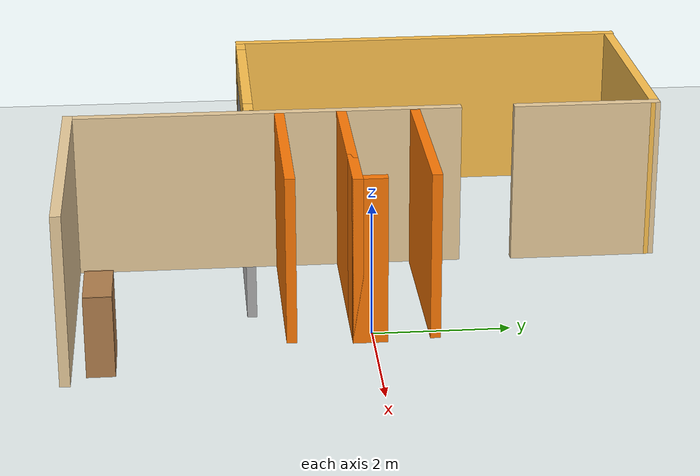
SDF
<sdf version="1.6">
 <world name="default">
  <model name="ground_plane">
   <static>1</static>
   <link name="link">
    <collision name="collision">
     <geometry><plane><normal>0 0 1</normal><size>100 100</size></plane></geometry>
     <surface><friction><ode><mu>100</mu><mu2>50</mu2></ode></friction></surface>
    </collision>
    <visual name="visual">
     <cast_shadows>0</cast_shadows>
     <geometry><plane><normal>0 0 1</normal><size>100 100</size></plane></geometry>
     <material>
      <script><uri>file://media/materials/scripts/gazebo.material</uri><name>Gazebo/Grey</name></script>
     </material>
    </visual>
   </link>
  </model>
  <model name="my_world">
   <link name="Wall_3">
    <pose>-1.47498 -4.475 0 0 -0 3.14159</pose>
    <visual name="Wall_3_Visual">
     <pose>0 0 1.25 0 -0 0</pose>
     <geometry><box><size>4 0.15 2.5</size></box></geometry>
     <material>
      <script><uri>file://media/materials/scripts/gazebo.material</uri><name>Gazebo/Grey</name></script>
      <ambient>0.921569 0.807843 0.615686 1</ambient>
      <diffuse>0.7 0.7 0.7 1</diffuse>
      <specular>0.01 0.01 0.01 1</specular>
      <emissive>0 0 0 1</emissive>
      <shader type="pixel"/>
     </material>
     <meta><layer>0</layer></meta>
    </visual>
    <collision name="Wall_3_Collision">
     <pose>0 0 1.25 0 -0 0</pose>
     <geometry><box><size>4 0.15 2.5</size></box></geometry>
     <surface>
      <friction>
       <ode><mu>1</mu><mu2>1</mu2><fdir1>0 0 0</fdir1><slip1>0</slip1><slip2>0</slip2></ode>
       <torsional>
        <coefficient>1</coefficient>
        <patch_radius>0</patch_radius>
        <surface_radius>0</surface_radius>
        <use_patch_radius>1</use_patch_radius>
        <ode><slip>0</slip></ode>
       </torsional>
      </friction>
      <bounce><restitution_coefficient>0</restitution_coefficient><threshold>1e+06</threshold></bounce>
      <contact>
       <collide_without_contact>0</collide_without_contact>
       <collide_without_contact_bitmask>1</collide_without_contact_bitmask>
       <collide_bitmask>1</collide_bitmask>
       <ode>
        <soft_cfm>0</soft_cfm>
        <soft_erp>0.2</soft_erp>
        <kp>1e+13</kp>
        <kd>1</kd>
        <max_vel>0.01</max_vel>
        <min_depth>0</min_depth>
       </ode>
       <bullet>
        <split_impulse>1</split_impulse>
        <split_impulse_penetration_threshold>-0.01</split_impulse_penetration_threshold>
        <soft_cfm>0</soft_cfm>
        <soft_erp>0.2</soft_erp>
        <kp>1e+13</kp>
        <kd>1</kd>
       </bullet>
      </contact>
     </surface>
    </collision>
   </link>
   <link name="Wall_40">
    <pose>-1.94141 -1.31804 0 0 -0 3.14159</pose>
    <visual name="Wall_40_Visual">
     <pose>0 0 1.25 0 -0 0</pose>
     <geometry><box><size>2.75 0.15 2.5</size></box></geometry>
     <material>
      <script><uri>file://media/materials/scripts/gazebo.material</uri><name>Gazebo/Grey</name></script>
      <ambient>0.996078 0.47451 0.0196078 1</ambient>
      <diffuse>0.7 0.7 0.7 1</diffuse>
      <specular>0.01 0.01 0.01 1</specular>
      <emissive>0 0 0 1</emissive>
      <shader type="pixel"/>
     </material>
     <meta><layer>0</layer></meta>
    </visual>
    <collision name="Wall_40_Collision">
     <pose>0 0 1.25 0 -0 0</pose>
     <geometry><box><size>2.75 0.15 2.5</size></box></geometry>
     <surface>
      <friction>
       <ode><mu>1</mu><mu2>1</mu2><fdir1>0 0 0</fdir1><slip1>0</slip1><slip2>0</slip2></ode>
       <torsional>
        <coefficient>1</coefficient>
        <patch_radius>0</patch_radius>
        <surface_radius>0</surface_radius>
        <use_patch_radius>1</use_patch_radius>
        <ode><slip>0</slip></ode>
       </torsional>
      </friction>
      <bounce><restitution_coefficient>0</restitution_coefficient><threshold>1e+06</threshold></bounce>
      <contact>
       <collide_without_contact>0</collide_without_contact>
       <collide_without_contact_bitmask>1</collide_without_contact_bitmask>
       <collide_bitmask>1</collide_bitmask>
       <ode>
        <soft_cfm>0</soft_cfm>
        <soft_erp>0.2</soft_erp>
        <kp>1e+13</kp>
        <kd>1</kd>
        <max_vel>0.01</max_vel>
        <min_depth>0</min_depth>
       </ode>
       <bullet>
        <split_impulse>1</split_impulse>
        <split_impulse_penetration_threshold>-0.01</split_impulse_penetration_threshold>
        <soft_cfm>0</soft_cfm>
        <soft_erp>0.2</soft_erp>
        <kp>1e+13</kp>
        <kd>1</kd>
       </bullet>
      </contact>
     </surface>
    </collision>
   </link>
   <link name="Wall_42">
    <pose>-1.9262 0.735138 0 0 -0 3.14159</pose>
    <visual name="Wall_42_Visual">
     <pose>0 0 1.25 0 -0 0</pose>
     <geometry><box><size>2.75 0.15 2.5</size></box></geometry>
     <material>
      <script><uri>file://media/materials/scripts/gazebo.material</uri><name>Gazebo/Grey</name></script>
      <ambient>0.996078 0.47451 0.0196078 1</ambient>
      <diffuse>0.7 0.7 0.7 1</diffuse>
      <specular>0.01 0.01 0.01 1</specular>
      <emissive>0 0 0 1</emissive>
      <shader type="pixel"/>
     </material>
     <meta><layer>0</layer></meta>
    </visual>
    <collision name="Wall_42_Collision">
     <pose>0 0 1.25 0 -0 0</pose>
     <geometry><box><size>2.75 0.15 2.5</size></box></geometry>
     <surface>
      <friction>
       <ode><mu>1</mu><mu2>1</mu2><fdir1>0 0 0</fdir1><slip1>0</slip1><slip2>0</slip2></ode>
       <torsional>
        <coefficient>1</coefficient>
        <patch_radius>0</patch_radius>
        <surface_radius>0</surface_radius>
        <use_patch_radius>1</use_patch_radius>
        <ode><slip>0</slip></ode>
       </torsional>
      </friction>
      <bounce><restitution_coefficient>0</restitution_coefficient><threshold>1e+06</threshold></bounce>
      <contact>
       <collide_without_contact>0</collide_without_contact>
       <collide_without_contact_bitmask>1</collide_without_contact_bitmask>
       <collide_bitmask>1</collide_bitmask>
       <ode>
        <soft_cfm>0</soft_cfm>
        <soft_erp>0.2</soft_erp>
        <kp>1e+13</kp>
        <kd>1</kd>
        <max_vel>0.01</max_vel>
        <min_depth>0</min_depth>
       </ode>
       <bullet>
        <split_impulse>1</split_impulse>
        <split_impulse_penetration_threshold>-0.01</split_impulse_penetration_threshold>
        <soft_cfm>0</soft_cfm>
        <soft_erp>0.2</soft_erp>
        <kp>1e+13</kp>
        <kd>1</kd>
       </bullet>
      </contact>
     </surface>
    </collision>
   </link>
   <link name="Wall_45">
    <pose>-0.976844 -0.380071 0 0 -0 0</pose>
    <visual name="Wall_45_Visual">
     <pose>0 0 1.25 0 -0 0</pose>
     <geometry><box><size>1 0.15 2.5</size></box></geometry>
     <material>
      <script><uri>file://media/materials/scripts/gazebo.material</uri><name>Gazebo/Grey</name></script>
      <ambient>0.996078 0.47451 0.0196078 1</ambient>
      <diffuse>0.7 0.7 0.7 1</diffuse>
      <specular>0.01 0.01 0.01 1</specular>
      <emissive>0 0 0 1</emissive>
      <shader type="pixel"/>
     </material>
     <meta><layer>0</layer></meta>
    </visual>
    <collision name="Wall_45_Collision">
     <pose>0 0 1.25 0 -0 0</pose>
     <geometry><box><size>1 0.15 2.5</size></box></geometry>
     <surface>
      <friction>
       <ode><mu>1</mu><mu2>1</mu2><fdir1>0 0 0</fdir1><slip1>0</slip1><slip2>0</slip2></ode>
       <torsional>
        <coefficient>1</coefficient>
        <patch_radius>0</patch_radius>
        <surface_radius>0</surface_radius>
        <use_patch_radius>1</use_patch_radius>
        <ode><slip>0</slip></ode>
       </torsional>
      </friction>
      <bounce><restitution_coefficient>0</restitution_coefficient><threshold>1e+06</threshold></bounce>
      <contact>
       <collide_without_contact>0</collide_without_contact>
       <collide_without_contact_bitmask>1</collide_without_contact_bitmask>
       <collide_bitmask>1</collide_bitmask>
       <ode>
        <soft_cfm>0</soft_cfm>
        <soft_erp>0.2</soft_erp>
        <kp>1e+13</kp>
        <kd>1</kd>
        <max_vel>0.01</max_vel>
        <min_depth>0</min_depth>
       </ode>
       <bullet>
        <split_impulse>1</split_impulse>
        <split_impulse_penetration_threshold>-0.01</split_impulse_penetration_threshold>
        <soft_cfm>0</soft_cfm>
        <soft_erp>0.2</soft_erp>
        <kp>1e+13</kp>
        <kd>1</kd>
       </bullet>
      </contact>
     </surface>
    </collision>
   </link>
   <link name="Wall_47">
    <pose>-2.32684 -0.380071 0 0 -0 3.14159</pose>
    <visual name="Wall_47_Visual">
     <pose>0 0 1.25 0 -0 0</pose>
     <geometry><box><size>2 0.15 2.5</size></box></geometry>
     <material>
      <script><uri>file://media/materials/scripts/gazebo.material</uri><name>Gazebo/Grey</name></script>
      <ambient>0.996078 0.47451 0.0196078 1</ambient>
      <diffuse>0.7 0.7 0.7 1</diffuse>
      <specular>0.01 0.01 0.01 1</specular>
      <emissive>0 0 0 1</emissive>
      <shader type="pixel"/>
     </material>
     <meta><layer>0</layer></meta>
    </visual>
    <collision name="Wall_47_Collision">
     <pose>0 0 1.25 0 -0 0</pose>
     <geometry><box><size>2 0.15 2.5</size></box></geometry>
     <surface>
      <friction>
       <ode><mu>1</mu><mu2>1</mu2><fdir1>0 0 0</fdir1><slip1>0</slip1><slip2>0</slip2></ode>
       <torsional>
        <coefficient>1</coefficient>
        <patch_radius>0</patch_radius>
        <surface_radius>0</surface_radius>
        <use_patch_radius>1</use_patch_radius>
        <ode><slip>0</slip></ode>
       </torsional>
      </friction>
      <bounce><restitution_coefficient>0</restitution_coefficient><threshold>1e+06</threshold></bounce>
      <contact>
       <collide_without_contact>0</collide_without_contact>
       <collide_without_contact_bitmask>1</collide_without_contact_bitmask>
       <collide_bitmask>1</collide_bitmask>
       <ode>
        <soft_cfm>0</soft_cfm>
        <soft_erp>0.2</soft_erp>
        <kp>1e+13</kp>
        <kd>1</kd>
        <max_vel>0.01</max_vel>
        <min_depth>0</min_depth>
       </ode>
       <bullet>
        <split_impulse>1</split_impulse>
        <split_impulse_penetration_threshold>-0.01</split_impulse_penetration_threshold>
        <soft_cfm>0</soft_cfm>
        <soft_erp>0.2</soft_erp>
        <kp>1e+13</kp>
        <kd>1</kd>
       </bullet>
      </contact>
     </surface>
    </collision>
   </link>
   <link name="Wall_49">
    <pose>-0.551844 -0.205071 0 0 -0 1.5708</pose>
    <visual name="Wall_49_Visual">
     <pose>0 0 1.25 0 -0 0</pose>
     <geometry><box><size>0.5 0.15 2.5</size></box></geometry>
     <material>
      <script><uri>file://media/materials/scripts/gazebo.material</uri><name>Gazebo/Grey</name></script>
      <ambient>0.996078 0.47451 0.0196078 1</ambient>
      <diffuse>0.7 0.7 0.7 1</diffuse>
      <specular>0.01 0.01 0.01 1</specular>
      <emissive>0 0 0 1</emissive>
      <shader type="pixel"/>
     </material>
     <meta><layer>0</layer></meta>
    </visual>
    <collision name="Wall_49_Collision">
     <pose>0 0 1.25 0 -0 0</pose>
     <geometry><box><size>0.5 0.15 2.5</size></box></geometry>
     <surface>
      <friction>
       <ode><mu>1</mu><mu2>1</mu2><fdir1>0 0 0</fdir1><slip1>0</slip1><slip2>0</slip2></ode>
       <torsional>
        <coefficient>1</coefficient>
        <patch_radius>0</patch_radius>
        <surface_radius>0</surface_radius>
        <use_patch_radius>1</use_patch_radius>
        <ode><slip>0</slip></ode>
       </torsional>
      </friction>
      <bounce><restitution_coefficient>0</restitution_coefficient><threshold>1e+06</threshold></bounce>
      <contact>
       <collide_without_contact>0</collide_without_contact>
       <collide_without_contact_bitmask>1</collide_without_contact_bitmask>
       <collide_bitmask>1</collide_bitmask>
       <ode>
        <soft_cfm>0</soft_cfm>
        <soft_erp>0.2</soft_erp>
        <kp>1e+13</kp>
        <kd>1</kd>
        <max_vel>0.01</max_vel>
        <min_depth>0</min_depth>
       </ode>
       <bullet>
        <split_impulse>1</split_impulse>
        <split_impulse_penetration_threshold>-0.01</split_impulse_penetration_threshold>
        <soft_cfm>0</soft_cfm>
        <soft_erp>0.2</soft_erp>
        <kp>1e+13</kp>
        <kd>1</kd>
       </bullet>
      </contact>
     </surface>
    </collision>
   </link>
   <link name="Wall_5">
    <pose>-3.39998 1.375 0 0 -0 0</pose>
    <visual name="Wall_5_Visual">
     <pose>0 0 1.25 0 -0 0</pose>
     <geometry><box><size>0.15 0.15 2.5</size></box></geometry>
     <material>
      <script><uri>file://media/materials/scripts/gazebo.material</uri><name>Gazebo/Grey</name></script>
      <ambient>1 1 1 1</ambient>
      <diffuse>0.7 0.7 0.7 1</diffuse>
      <specular>0.01 0.01 0.01 1</specular>
      <emissive>0 0 0 1</emissive>
      <shader type="pixel"/>
     </material>
     <meta><layer>0</layer></meta>
    </visual>
    <collision name="Wall_5_Collision">
     <pose>0 0 1.25 0 -0 0</pose>
     <geometry><box><size>0.15 0.15 2.5</size></box></geometry>
     <surface>
      <friction>
       <ode><mu>1</mu><mu2>1</mu2><fdir1>0 0 0</fdir1><slip1>0</slip1><slip2>0</slip2></ode>
       <torsional>
        <coefficient>1</coefficient>
        <patch_radius>0</patch_radius>
        <surface_radius>0</surface_radius>
        <use_patch_radius>1</use_patch_radius>
        <ode><slip>0</slip></ode>
       </torsional>
      </friction>
      <bounce><restitution_coefficient>0</restitution_coefficient><threshold>1e+06</threshold></bounce>
      <contact>
       <collide_without_contact>0</collide_without_contact>
       <collide_without_contact_bitmask>1</collide_without_contact_bitmask>
       <collide_bitmask>1</collide_bitmask>
       <ode>
        <soft_cfm>0</soft_cfm>
        <soft_erp>0.2</soft_erp>
        <kp>1e+13</kp>
        <kd>1</kd>
        <max_vel>0.01</max_vel>
        <min_depth>0</min_depth>
       </ode>
       <bullet>
        <split_impulse>1</split_impulse>
        <split_impulse_penetration_threshold>-0.01</split_impulse_penetration_threshold>
        <soft_cfm>0</soft_cfm>
        <soft_erp>0.2</soft_erp>
        <kp>1e+13</kp>
        <kd>1</kd>
       </bullet>
      </contact>
     </surface>
    </collision>
   </link>
   <link name="Wall_51">
    <pose>-3.36377 3.3754 0 0 -0 1.5708</pose>
    <visual name="Wall_51_Visual">
     <pose>0 0 1.25 0 -0 0</pose>
     <geometry><box><size>2.25 0.15 2.5</size></box></geometry>
     <material>
      <script><uri>file://media/materials/scripts/gazebo.material</uri><name>Gazebo/Grey</name></script>
      <ambient>0.921569 0.807843 0.615686 1</ambient>
      <diffuse>0.7 0.7 0.7 1</diffuse>
      <specular>0.01 0.01 0.01 1</specular>
      <emissive>0 0 0 1</emissive>
      <shader type="pixel"/>
     </material>
     <meta><layer>0</layer></meta>
    </visual>
    <collision name="Wall_51_Collision">
     <pose>0 0 1.25 0 -0 0</pose>
     <geometry><box><size>2.25 0.15 2.5</size></box></geometry>
     <surface>
      <friction>
       <ode><mu>1</mu><mu2>1</mu2><fdir1>0 0 0</fdir1><slip1>0</slip1><slip2>0</slip2></ode>
       <torsional>
        <coefficient>1</coefficient>
        <patch_radius>0</patch_radius>
        <surface_radius>0</surface_radius>
        <use_patch_radius>1</use_patch_radius>
        <ode><slip>0</slip></ode>
       </torsional>
      </friction>
      <bounce><restitution_coefficient>0</restitution_coefficient><threshold>1e+06</threshold></bounce>
      <contact>
       <collide_without_contact>0</collide_without_contact>
       <collide_without_contact_bitmask>1</collide_without_contact_bitmask>
       <collide_bitmask>1</collide_bitmask>
       <ode>
        <soft_cfm>0</soft_cfm>
        <soft_erp>0.2</soft_erp>
        <kp>1e+13</kp>
        <kd>1</kd>
        <max_vel>0.01</max_vel>
        <min_depth>0</min_depth>
       </ode>
       <bullet>
        <split_impulse>1</split_impulse>
        <split_impulse_penetration_threshold>-0.01</split_impulse_penetration_threshold>
        <soft_cfm>0</soft_cfm>
        <soft_erp>0.2</soft_erp>
        <kp>1e+13</kp>
        <kd>1</kd>
       </bullet>
      </contact>
     </surface>
    </collision>
   </link>
   <link name="Wall_55">
    <pose>-6.92187 1.32892 0 0 -0 1.57325</pose>
    <visual name="Wall_55_Visual">
     <pose>0 0 1.25 0 -0 0</pose>
     <geometry><box><size>6.35648 0.15 2.5</size></box></geometry>
     <material>
      <script><uri>file://media/materials/scripts/gazebo.material</uri><name>Gazebo/Grey</name></script>
      <ambient>1 0.764706 0.305882 1</ambient>
      <diffuse>0.7 0.7 0.7 1</diffuse>
      <specular>0.01 0.01 0.01 1</specular>
      <emissive>0 0 0 1</emissive>
      <shader type="pixel"/>
     </material>
     <meta><layer>0</layer></meta>
    </visual>
    <collision name="Wall_55_Collision">
     <pose>0 0 1.25 0 -0 0</pose>
     <geometry><box><size>6.35648 0.15 2.5</size></box></geometry>
     <surface>
      <friction>
       <ode><mu>1</mu><mu2>1</mu2><fdir1>0 0 0</fdir1><slip1>0</slip1><slip2>0</slip2></ode>
       <torsional>
        <coefficient>1</coefficient>
        <patch_radius>0</patch_radius>
        <surface_radius>0</surface_radius>
        <use_patch_radius>1</use_patch_radius>
        <ode><slip>0</slip></ode>
       </torsional>
      </friction>
      <bounce><restitution_coefficient>0</restitution_coefficient><threshold>1e+06</threshold></bounce>
      <contact>
       <collide_without_contact>0</collide_without_contact>
       <collide_without_contact_bitmask>1</collide_without_contact_bitmask>
       <collide_bitmask>1</collide_bitmask>
       <ode>
        <soft_cfm>0</soft_cfm>
        <soft_erp>0.2</soft_erp>
        <kp>1e+13</kp>
        <kd>1</kd>
        <max_vel>0.01</max_vel>
        <min_depth>0</min_depth>
       </ode>
       <bullet>
        <split_impulse>1</split_impulse>
        <split_impulse_penetration_threshold>-0.01</split_impulse_penetration_threshold>
        <soft_cfm>0</soft_cfm>
        <soft_erp>0.2</soft_erp>
        <kp>1e+13</kp>
        <kd>1</kd>
       </bullet>
      </contact>
     </surface>
    </collision>
   </link>
   <link name="Wall_56">
    <pose>-5.14663 4.42117 0 0 -0 0.00237</pose>
    <visual name="Wall_56_Visual">
     <pose>0 0 1.25 0 -0 0</pose>
     <geometry><box><size>3.71571 0.15 2.5</size></box></geometry>
     <material>
      <script><uri>file://media/materials/scripts/gazebo.material</uri><name>Gazebo/Grey</name></script>
      <ambient>1 0.764706 0.305882 1</ambient>
      <diffuse>0.7 0.7 0.7 1</diffuse>
      <specular>0.01 0.01 0.01 1</specular>
      <emissive>0 0 0 1</emissive>
      <shader type="pixel"/>
     </material>
     <meta><layer>0</layer></meta>
    </visual>
    <collision name="Wall_56_Collision">
     <pose>0 0 1.25 0 -0 0</pose>
     <geometry><box><size>3.71571 0.15 2.5</size></box></geometry>
     <surface>
      <friction>
       <ode><mu>1</mu><mu2>1</mu2><fdir1>0 0 0</fdir1><slip1>0</slip1><slip2>0</slip2></ode>
       <torsional>
        <coefficient>1</coefficient>
        <patch_radius>0</patch_radius>
        <surface_radius>0</surface_radius>
        <use_patch_radius>1</use_patch_radius>
        <ode><slip>0</slip></ode>
       </torsional>
      </friction>
      <bounce><restitution_coefficient>0</restitution_coefficient><threshold>1e+06</threshold></bounce>
      <contact>
       <collide_without_contact>0</collide_without_contact>
       <collide_without_contact_bitmask>1</collide_without_contact_bitmask>
       <collide_bitmask>1</collide_bitmask>
       <ode>
        <soft_cfm>0</soft_cfm>
        <soft_erp>0.2</soft_erp>
        <kp>1e+13</kp>
        <kd>1</kd>
        <max_vel>0.01</max_vel>
        <min_depth>0</min_depth>
       </ode>
       <bullet>
        <split_impulse>1</split_impulse>
        <split_impulse_penetration_threshold>-0.01</split_impulse_penetration_threshold>
        <soft_cfm>0</soft_cfm>
        <soft_erp>0.2</soft_erp>
        <kp>1e+13</kp>
        <kd>1</kd>
       </bullet>
      </contact>
     </surface>
    </collision>
   </link>
   <link name="Wall_58">
    <pose>-5.23927 -1.77431 0 0 -0 0</pose>
    <visual name="Wall_58_Visual_0">
     <pose>-1.52155 0 1.25 0 -0 0</pose>
     <geometry><box><size>0.456906 0.15 2.5</size></box></geometry>
     <material>
      <script><uri>file://media/materials/scripts/gazebo.material</uri><name>Gazebo/Grey</name></script>
      <ambient>1 0.764706 0.305882 1</ambient>
      <diffuse>0.7 0.7 0.7 1</diffuse>
      <specular>0.01 0.01 0.01 1</specular>
      <emissive>0 0 0 1</emissive>
      <shader type="pixel"/>
     </material>
     <meta><layer>0</layer></meta>
    </visual>
    <visual name="Wall_58_Visual_1">
     <pose>1.59098 0 1.25 0 -0 0</pose>
     <geometry><box><size>0.318044 0.15 2.5</size></box></geometry>
     <material>
      <script><uri>file://media/materials/scripts/gazebo.material</uri><name>Gazebo/Grey</name></script>
      <ambient>1 0.764706 0.305882 1</ambient>
      <diffuse>0.7 0.7 0.7 1</diffuse>
      <specular>0.01 0.01 0.01 1</specular>
      <emissive>0 0 0 1</emissive>
      <shader type="pixel"/>
     </material>
     <meta><layer>0</layer></meta>
    </visual>
    <visual name="Wall_58_Visual_2">
     <pose>0.069431 0 2.25 0 -0 0</pose>
     <geometry><box><size>2.72505 0.15 0.5</size></box></geometry>
     <material>
      <script><uri>file://media/materials/scripts/gazebo.material</uri><name>Gazebo/Grey</name></script>
      <ambient>1 0.764706 0.305882 1</ambient>
      <diffuse>0.7 0.7 0.7 1</diffuse>
      <specular>0.01 0.01 0.01 1</specular>
      <emissive>0 0 0 1</emissive>
      <shader type="pixel"/>
     </material>
     <meta><layer>0</layer></meta>
    </visual>
    <collision name="Wall_58_Collision_0">
     <pose>-1.52155 0 1.25 0 -0 0</pose>
     <geometry><box><size>0.456906 0.15 2.5</size></box></geometry>
     <surface>
      <friction>
       <ode><mu>1</mu><mu2>1</mu2><fdir1>0 0 0</fdir1><slip1>0</slip1><slip2>0</slip2></ode>
       <torsional>
        <coefficient>1</coefficient>
        <patch_radius>0</patch_radius>
        <surface_radius>0</surface_radius>
        <use_patch_radius>1</use_patch_radius>
        <ode><slip>0</slip></ode>
       </torsional>
      </friction>
      <bounce><restitution_coefficient>0</restitution_coefficient><threshold>1e+06</threshold></bounce>
      <contact>
       <collide_without_contact>0</collide_without_contact>
       <collide_without_contact_bitmask>1</collide_without_contact_bitmask>
       <collide_bitmask>1</collide_bitmask>
       <ode>
        <soft_cfm>0</soft_cfm>
        <soft_erp>0.2</soft_erp>
        <kp>1e+13</kp>
        <kd>1</kd>
        <max_vel>0.01</max_vel>
        <min_depth>0</min_depth>
       </ode>
       <bullet>
        <split_impulse>1</split_impulse>
        <split_impulse_penetration_threshold>-0.01</split_impulse_penetration_threshold>
        <soft_cfm>0</soft_cfm>
        <soft_erp>0.2</soft_erp>
        <kp>1e+13</kp>
        <kd>1</kd>
       </bullet>
      </contact>
     </surface>
    </collision>
    <collision name="Wall_58_Collision_1">
     <pose>1.59098 0 1.25 0 -0 0</pose>
     <geometry><box><size>0.318044 0.15 2.5</size></box></geometry>
     <surface>
      <friction>
       <ode><mu>1</mu><mu2>1</mu2><fdir1>0 0 0</fdir1><slip1>0</slip1><slip2>0</slip2></ode>
       <torsional>
        <coefficient>1</coefficient>
        <patch_radius>0</patch_radius>
        <surface_radius>0</surface_radius>
        <use_patch_radius>1</use_patch_radius>
        <ode><slip>0</slip></ode>
       </torsional>
      </friction>
      <bounce><restitution_coefficient>0</restitution_coefficient><threshold>1e+06</threshold></bounce>
      <contact>
       <collide_without_contact>0</collide_without_contact>
       <collide_without_contact_bitmask>1</collide_without_contact_bitmask>
       <collide_bitmask>1</collide_bitmask>
       <ode>
        <soft_cfm>0</soft_cfm>
        <soft_erp>0.2</soft_erp>
        <kp>1e+13</kp>
        <kd>1</kd>
        <max_vel>0.01</max_vel>
        <min_depth>0</min_depth>
       </ode>
       <bullet>
        <split_impulse>1</split_impulse>
        <split_impulse_penetration_threshold>-0.01</split_impulse_penetration_threshold>
        <soft_cfm>0</soft_cfm>
        <soft_erp>0.2</soft_erp>
        <kp>1e+13</kp>
        <kd>1</kd>
       </bullet>
      </contact>
     </surface>
    </collision>
    <collision name="Wall_58_Collision_2">
     <pose>0.069431 0 2.25 0 -0 0</pose>
     <geometry><box><size>2.72505 0.15 0.5</size></box></geometry>
     <surface>
      <friction>
       <ode><mu>1</mu><mu2>1</mu2><fdir1>0 0 0</fdir1><slip1>0</slip1><slip2>0</slip2></ode>
       <torsional>
        <coefficient>1</coefficient>
        <patch_radius>0</patch_radius>
        <surface_radius>0</surface_radius>
        <use_patch_radius>1</use_patch_radius>
        <ode><slip>0</slip></ode>
       </torsional>
      </friction>
      <bounce><restitution_coefficient>0</restitution_coefficient><threshold>1e+06</threshold></bounce>
      <contact>
       <collide_without_contact>0</collide_without_contact>
       <collide_without_contact_bitmask>1</collide_without_contact_bitmask>
       <collide_bitmask>1</collide_bitmask>
       <ode>
        <soft_cfm>0</soft_cfm>
        <soft_erp>0.2</soft_erp>
        <kp>1e+13</kp>
        <kd>1</kd>
        <max_vel>0.01</max_vel>
        <min_depth>0</min_depth>
       </ode>
       <bullet>
        <split_impulse>1</split_impulse>
        <split_impulse_penetration_threshold>-0.01</split_impulse_penetration_threshold>
        <soft_cfm>0</soft_cfm>
        <soft_erp>0.2</soft_erp>
        <kp>1e+13</kp>
        <kd>1</kd>
       </bullet>
      </contact>
     </surface>
    </collision>
   </link>
   <link name="Wall_6">
    <pose>-3.39998 1.375 0 0 -0 0</pose>
    <visual name="Wall_6_Visual">
     <pose>0 0 1.25 0 -0 0</pose>
     <geometry><box><size>0.15 0.15 2.5</size></box></geometry>
     <material>
      <script><uri>file://media/materials/scripts/gazebo.material</uri><name>Gazebo/Grey</name></script>
      <ambient>0.921569 0.807843 0.615686 1</ambient>
      <diffuse>0.7 0.7 0.7 1</diffuse>
      <specular>0.01 0.01 0.01 1</specular>
      <emissive>0 0 0 1</emissive>
      <shader type="pixel"/>
     </material>
     <meta><layer>0</layer></meta>
    </visual>
    <collision name="Wall_6_Collision">
     <pose>0 0 1.25 0 -0 0</pose>
     <geometry><box><size>0.15 0.15 2.5</size></box></geometry>
     <surface>
      <friction>
       <ode><mu>1</mu><mu2>1</mu2><fdir1>0 0 0</fdir1><slip1>0</slip1><slip2>0</slip2></ode>
       <torsional>
        <coefficient>1</coefficient>
        <patch_radius>0</patch_radius>
        <surface_radius>0</surface_radius>
        <use_patch_radius>1</use_patch_radius>
        <ode><slip>0</slip></ode>
       </torsional>
      </friction>
      <bounce><restitution_coefficient>0</restitution_coefficient><threshold>1e+06</threshold></bounce>
      <contact>
       <collide_without_contact>0</collide_without_contact>
       <collide_without_contact_bitmask>1</collide_without_contact_bitmask>
       <collide_bitmask>1</collide_bitmask>
       <ode>
        <soft_cfm>0</soft_cfm>
        <soft_erp>0.2</soft_erp>
        <kp>1e+13</kp>
        <kd>1</kd>
        <max_vel>0.01</max_vel>
        <min_depth>0</min_depth>
       </ode>
       <bullet>
        <split_impulse>1</split_impulse>
        <split_impulse_penetration_threshold>-0.01</split_impulse_penetration_threshold>
        <soft_cfm>0</soft_cfm>
        <soft_erp>0.2</soft_erp>
        <kp>1e+13</kp>
        <kd>1</kd>
       </bullet>
      </contact>
     </surface>
    </collision>
   </link>
   <link name="Wall_8">
    <pose>-3.39998 -1.55 0 0 0 -1.5708</pose>
    <visual name="Wall_8_Visual">
     <pose>0 0 1.25 0 -0 0</pose>
     <geometry><box><size>6 0.15 2.5</size></box></geometry>
     <material>
      <script><uri>file://media/materials/scripts/gazebo.material</uri><name>Gazebo/Grey</name></script>
      <ambient>0.921569 0.807843 0.615686 1</ambient>
      <diffuse>0.7 0.7 0.7 1</diffuse>
      <specular>0.01 0.01 0.01 1</specular>
      <emissive>0 0 0 1</emissive>
      <shader type="pixel"/>
     </material>
     <meta><layer>0</layer></meta>
    </visual>
    <collision name="Wall_8_Collision">
     <pose>0 0 1.25 0 -0 0</pose>
     <geometry><box><size>6 0.15 2.5</size></box></geometry>
     <surface>
      <friction>
       <ode><mu>1</mu><mu2>1</mu2><fdir1>0 0 0</fdir1><slip1>0</slip1><slip2>0</slip2></ode>
       <torsional>
        <coefficient>1</coefficient>
        <patch_radius>0</patch_radius>
        <surface_radius>0</surface_radius>
        <use_patch_radius>1</use_patch_radius>
        <ode><slip>0</slip></ode>
       </torsional>
      </friction>
      <bounce><restitution_coefficient>0</restitution_coefficient><threshold>1e+06</threshold></bounce>
      <contact>
       <collide_without_contact>0</collide_without_contact>
       <collide_without_contact_bitmask>1</collide_without_contact_bitmask>
       <collide_bitmask>1</collide_bitmask>
       <ode>
        <soft_cfm>0</soft_cfm>
        <soft_erp>0.2</soft_erp>
        <kp>1e+13</kp>
        <kd>1</kd>
        <max_vel>0.01</max_vel>
        <min_depth>0</min_depth>
       </ode>
       <bullet>
        <split_impulse>1</split_impulse>
        <split_impulse_penetration_threshold>-0.01</split_impulse_penetration_threshold>
        <soft_cfm>0</soft_cfm>
        <soft_erp>0.2</soft_erp>
        <kp>1e+13</kp>
        <kd>1</kd>
       </bullet>
      </contact>
     </surface>
    </collision>
   </link>
   <link name="link_2_clone_0">
    <pose>-5.15709 -1.77234 0.5 0 -0 0</pose>
    <inertial>
     <mass>1.32622</mass>
     <inertia><ixx>1.07273</ixx><ixy>0</ixy><ixz>0</ixz><iyy>1.93534</iyy><iyz>0</iyz><izz>0.867746</izz></inertia>
    </inertial>
    <visual name="visual">
     <geometry><box><size>2.79793 0.152332 3.11177</size></box></geometry>
     <material>
      <lighting>1</lighting>
      <script><uri>file://media/materials/scripts/gazebo.material</uri><name>Gazebo/Grey</name></script>
      <shader type="pixel"/>
      <ambient>0.3 0.3 0.3 1</ambient>
      <diffuse>0.7 0.7 0.7 1</diffuse>
      <specular>0.01 0.01 0.01 1</specular>
      <emissive>0 0 0 1</emissive>
     </material>
    </visual>
    <collision name="collision">
     <geometry><box><size>2.79793 0.152332 3.11177</size></box></geometry>
     <surface>
      <friction>
       <ode><mu>1</mu><mu2>1</mu2><fdir1>0 0 0</fdir1><slip1>0</slip1><slip2>0</slip2></ode>
       <torsional>
        <coefficient>1</coefficient>
        <patch_radius>0</patch_radius>
        <surface_radius>0</surface_radius>
        <use_patch_radius>1</use_patch_radius>
        <ode><slip>0</slip></ode>
       </torsional>
      </friction>
      <bounce><restitution_coefficient>0</restitution_coefficient><threshold>1e+06</threshold></bounce>
      <contact>
       <collide_without_contact>0</collide_without_contact>
       <collide_without_contact_bitmask>1</collide_without_contact_bitmask>
       <collide_bitmask>1</collide_bitmask>
       <ode>
        <soft_cfm>0</soft_cfm>
        <soft_erp>0.2</soft_erp>
        <kp>1e+13</kp>
        <kd>1</kd>
        <max_vel>0.01</max_vel>
        <min_depth>0</min_depth>
       </ode>
       <bullet>
        <split_impulse>1</split_impulse>
        <split_impulse_penetration_threshold>-0.01</split_impulse_penetration_threshold>
        <soft_cfm>0</soft_cfm>
        <soft_erp>0.2</soft_erp>
        <kp>1e+13</kp>
        <kd>1</kd>
       </bullet>
      </contact>
     </surface>
    </collision>
   </link>
   <static>1</static>
   <pose>0.782828 0.15688 0 0 -0 0</pose>
  </model>
  <model name="bookshelf">
   <static>1</static>
   <link name="link">
    <inertial><mass>1</mass></inertial>
    <collision name="back">
     <pose>0 0.005 0.6 0 -0 0</pose>
     <geometry><box><size>0.9 0.01 1.2</size></box></geometry>
    </collision>
    <visual name="visual1">
     <pose>0 0.005 0.6 0 -0 0</pose>
     <geometry><box><size>0.9 0.01 1.2</size></box></geometry>
     <material>
      <script><uri>file://media/materials/scripts/gazebo.material</uri><name>Gazebo/Wood</name></script>
     </material>
    </visual>
    <collision name="left_side">
     <pose>0.45 -0.195 0.6 0 -0 0</pose>
     <geometry><box><size>0.02 0.4 1.2</size></box></geometry>
    </collision>
    <visual name="visual2">
     <pose>0.45 -0.195 0.6 0 -0 0</pose>
     <geometry><box><size>0.02 0.4 1.2</size></box></geometry>
     <material>
      <script><uri>file://media/materials/scripts/gazebo.material</uri><name>Gazebo/Wood</name></script>
     </material>
    </visual>
    <collision name="right_side">
     <pose>-0.45 -0.195 0.6 0 -0 0</pose>
     <geometry><box><size>0.02 0.4 1.2</size></box></geometry>
    </collision>
    <visual name="visual3">
     <pose>-0.45 -0.195 0.6 0 -0 0</pose>
     <geometry><box><size>0.02 0.4 1.2</size></box></geometry>
     <material>
      <script><uri>file://media/materials/scripts/gazebo.material</uri><name>Gazebo/Wood</name></script>
     </material>
    </visual>
    <collision name="bottom">
     <pose>0 -0.195 0.03 0 -0 0</pose>
     <geometry><box><size>0.88 0.4 0.06</size></box></geometry>
    </collision>
    <visual name="visual4">
     <pose>0 -0.195 0.03 0 -0 0</pose>
     <geometry><box><size>0.88 0.4 0.06</size></box></geometry>
     <material>
      <script><uri>file://media/materials/scripts/gazebo.material</uri><name>Gazebo/Wood</name></script>
     </material>
    </visual>
    <collision name="top">
     <pose>0 -0.195 1.19 0 -0 0</pose>
     <geometry><box><size>0.88 0.4 0.02</size></box></geometry>
    </collision>
    <visual name="visual5">
     <pose>0 -0.195 1.19 0 -0 0</pose>
     <geometry><box><size>0.88 0.4 0.02</size></box></geometry>
     <material>
      <script><uri>file://media/materials/scripts/gazebo.material</uri><name>Gazebo/Wood</name></script>
     </material>
    </visual>
    <collision name="low_shelf">
     <pose>0 -0.195 0.43 0 -0 0</pose>
     <geometry><box><size>0.88 0.4 0.02</size></box></geometry>
    </collision>
    <visual name="visual6">
     <pose>0 -0.195 0.43 0 -0 0</pose>
     <geometry><box><size>0.88 0.4 0.02</size></box></geometry>
     <material>
      <script><uri>file://media/materials/scripts/gazebo.material</uri><name>Gazebo/Wood</name></script>
     </material>
    </visual>
    <collision name="high_shelf">
     <pose>0 -0.195 0.8 0 -0 0</pose>
     <geometry><box><size>0.88 0.4 0.02</size></box></geometry>
    </collision>
    <visual name="visual7">
     <pose>0 -0.195 0.8 0 -0 0</pose>
     <geometry><box><size>0.88 0.4 0.02</size></box></geometry>
     <material>
      <script><uri>file://media/materials/scripts/gazebo.material</uri><name>Gazebo/Wood</name></script>
     </material>
    </visual>
   </link>
   <pose>0.59581 -3.64292 0 0 -0 0</pose>
  </model>
 </world>
</sdf>
